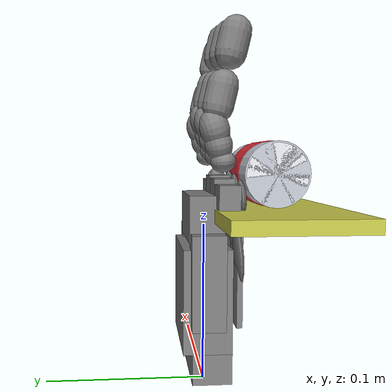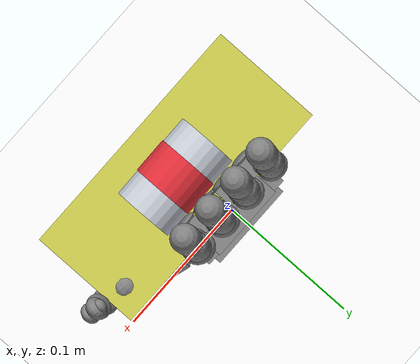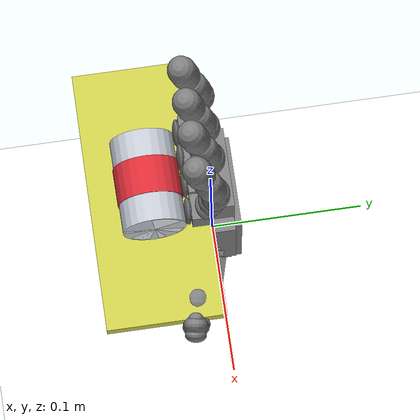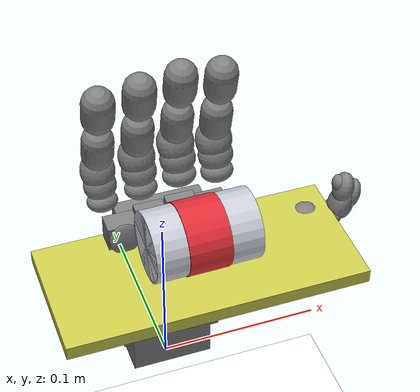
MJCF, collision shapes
<mujoco model="v2_scene_grasp_can_330ml">
  <size nconmax="120" />
  <include file="right_hand_v2_vertical_bottle.xml" />
  <include file="empty_can_330ml_sleek.xml" />

  <statistic center="0.024 -0.038 0.090" extent="0.20" meansize="0.012" />

  <visual>
    <headlight diffuse=".8 .8 .8" ambient=".25 .25 .25" specular="1 1 1" />
    <rgba force="1 0 0 1" />
    <global azimuth="118" elevation="-18" />
  </visual>

  <asset>
    <texture type="skybox" builtin="gradient" rgb1="1 1 1" rgb2="1 1 1" width="800" height="800" />
    <texture type="2d" name="groundplane" builtin="checker" mark="edge" rgb1="1 1 1" rgb2="1 1 1" markrgb="0 0 0" width="300" height="300" />
    <material name="groundplane" texture="groundplane" texuniform="true" texrepeat="5 5" reflectance="0" />
    <material name="support_pad" rgba="0.80 0.80 0.30 0.32" />
  </asset>

  <worldbody>
    <camera name="side" pos="-0.304 -0.242 0.280" xyaxes="0.52 -0.854 0 0.365 0.222 0.904" />
    <camera name="palm" pos="-0.332 0.020 0.212" xyaxes="0 -1 0 0.358 0 0.934" />
    <camera name="front" pos="0.382 -0.040 0.212" xyaxes="0 1 0 -0.358 0 0.934" />

    <geom
        name="floor"
        pos="0 0 -0.25"
        size="0 0 0.01"
        type="plane"
        material="groundplane"
        contype="2"
        conaffinity="2"
    />

    <!-- 横放易拉罐支撑台。编辑器会默认把它移除，但场景文件里保留一份基准支撑。 -->
    <body name="cube_support" mocap="true" pos="0.008041 -0.040830 0.108128">
      <geom
          name="cube_support_geom"
          type="box"
          size="0.085 0.038 0.004"
          pos="0 0 0"
          material="support_pad"
          contype="4"
          conaffinity="0"
      />
    </body>
  </worldbody>

  <sensor>
    <framepos name="cube_position" objtype="body" objname="cube" />
    <framequat name="cube_orientation" objtype="body" objname="cube" />
    <framelinvel name="cube_linvel" objtype="body" objname="cube" />
    <frameangvel name="cube_angvel" objtype="body" objname="cube" />
    <framepos name="can_position" objtype="body" objname="cube" />
    <framequat name="can_orientation" objtype="body" objname="cube" />
    <framelinvel name="can_linvel" objtype="body" objname="cube" />
    <frameangvel name="can_angvel" objtype="body" objname="cube" />
    <framepos name="cube_grasp_band_position" objtype="site" objname="can_grasp_band" />
    <framepos name="palm_position" objtype="site" objname="grasp_site" />
    <framepos name="th_tip_position" objtype="site" objname="th_tip" reftype="site" refname="grasp_site" />
    <framepos name="if_tip_position" objtype="site" objname="if_tip" reftype="site" refname="grasp_site" />
    <framepos name="mf_tip_position" objtype="site" objname="mf_tip" reftype="site" refname="grasp_site" />
    <framepos name="rf_tip_position" objtype="site" objname="rf_tip" reftype="site" refname="grasp_site" />
    <framepos name="pf_tip_position" objtype="site" objname="pf_tip" reftype="site" refname="grasp_site" />
  </sensor>

  <keyframe>
    <!-- CAN03: 记录用户在编辑器中确认的小圆柱初始位姿。 -->
    <key
        name="home"
        qpos="0.3400 0.3145 0.3520 0.3256 0.3380 0.3127 0.3000 0.2775 1.18 0.1200 0.18     0.008041 -0.040830 0.132128 0.707715 -0.007412 0.706458 0.000577"
        ctrl="1.18 0.18 0.3400 0.3520 0.3380 0.3000"
        mpos="0.008041 -0.040830 0.108128"
        mquat="1 0 0 0"
    />
  </keyframe>
</mujoco>

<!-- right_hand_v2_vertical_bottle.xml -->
<mujoco model="Lingxi_Hand_V2_Right">
  <compiler angle="radian" meshdir="/home/ll/SRTP/Aero-Hand/handinformation/URDF/右/qbr/meshes/" />
  <option timestep="0.01" integrator="Euler" iterations="20" ls_iterations="20">
    <flag eulerdamp="disable" />
  </option>
  <custom>
    <numeric data="80" name="max_contact_points" />
    <numeric data="50" name="max_geom_pairs" />
  </custom>
  <asset>
    <material name="black" rgba="0.2 0.2 0.2 1" />
    <material name="gray" rgba="0.5 0.5 0.5 1" />
    <material name="white" rgba="0.529 0.549 0.549 1" />
    <material name="rubber" rgba="0.3 0.3 0.3 1" />
    <mesh name="v2_palm" file="v2_base_link.STL" />
    <mesh name="v2_thumb_base" file="link1.STL" />
    <mesh name="v2_thumb_mid" file="link2.STL" />
    <mesh name="v2_thumb_tip" file="link3.STL" />
    <mesh name="v2_index_proximal" file="link4.STL" />
    <mesh name="v2_index_distal" file="link5.STL" />
    <mesh name="v2_middle_proximal" file="link6.STL" />
    <mesh name="v2_middle_distal" file="link7.STL" />
    <mesh name="v2_ring_proximal" file="link8.STL" />
    <mesh name="v2_ring_distal" file="link9.STL" />
    <mesh name="v2_pinky_proximal" file="link10.STL" />
    <mesh name="v2_pinky_distal" file="link11.STL" />
  </asset>
  <default>
    <default class="v2_hand">
      <site group="4" />
      <default class="visual">
        <geom group="2" type="mesh" contype="0" conaffinity="0" density="0" material="white" />
      </default>
      <joint damping="0.02" armature="0.001559127" frictionloss="0.02" />
      <position kp="3.0" />
      <default class="mcp">
        <joint range="0 1.3963" damping="0.1" />
        <position ctrlrange="0 1.40" />
      </default>
      <default class="pip">
        <joint range="0 1.2915" damping="0.05" />
      </default>
      <default class="thumb_cmc">
        <joint range="0 1.3788" damping="0.1" />
        <position ctrlrange="0 1.38" />
      </default>
      <!-- 拇指 flex 代理遵循 handinformation 中的两段弯曲：
           被动段约 30°，主动段约 45°。 -->
      <default class="thumb_flex">
        <joint range="0 0.5236" damping="0.05" />
      </default>
      <default class="thumb_mcp">
        <joint range="0 0.7854" damping="0.05" />
        <position ctrlrange="0 0.79" />
      </default>
    </default>
  </default>
  <contact>
    <exclude body1="palm" body2="right_index_proximal" />
    <exclude body1="palm" body2="right_middle_proximal" />
    <exclude body1="palm" body2="right_ring_proximal" />
    <exclude body1="palm" body2="right_pinky_proximal" />
    <exclude body1="palm" body2="right_thumb_base" />
    <exclude body1="palm" body2="right_thumb_mid" />
    <exclude body1="palm" body2="right_ring_distal" />
    <exclude body1="palm" body2="right_pinky_distal" />
    <exclude body1="v2_mount" body2="right_index_proximal" />
    <exclude body1="v2_mount" body2="right_middle_proximal" />
    <exclude body1="v2_mount" body2="right_ring_proximal" />
    <exclude body1="v2_mount" body2="right_pinky_proximal" />
    <exclude body1="v2_mount" body2="right_thumb_base" />
    <exclude body1="right_index_proximal" body2="right_index_distal" />
    <exclude body1="right_middle_proximal" body2="right_middle_distal" />
    <exclude body1="right_ring_proximal" body2="right_ring_distal" />
    <exclude body1="right_pinky_proximal" body2="right_pinky_distal" />
    <exclude body1="right_thumb_base" body2="right_thumb_mid" />
    <exclude body1="right_thumb_mid" body2="right_thumb_tip" />
    <exclude body1="right_index_proximal" body2="right_middle_proximal" />
    <exclude body1="right_index_distal" body2="right_middle_distal" />
    <exclude body1="right_middle_proximal" body2="right_ring_proximal" />
    <exclude body1="right_middle_distal" body2="right_ring_distal" />
    <exclude body1="right_ring_proximal" body2="right_pinky_proximal" />
    <exclude body1="right_ring_distal" body2="right_pinky_distal" />
    <exclude body1="right_index_proximal" body2="right_middle_distal" />
    <exclude body1="right_middle_proximal" body2="right_ring_distal" />
    <exclude body1="right_ring_proximal" body2="right_pinky_distal" />
    <exclude body1="right_middle_proximal" body2="right_index_distal" />
    <exclude body1="right_ring_proximal" body2="right_middle_distal" />
    <exclude body1="right_pinky_proximal" body2="right_ring_distal" />
  </contact>
  <worldbody>
    <body name="v2_mount" pos="0 0 0" euler="1.5708 0 0" childclass="v2_hand">
      <body name="palm" pos="0 0 0">
        <geom type="mesh" mesh="v2_palm" class="visual" />
        <geom name="palm_capsule_000" type="box" size="0.0300 0.0310 0.0145" pos="0.0000 0.0580 -0.0010" group="3" friction="1.95 0.014 0.0002" solref="0.008 1.1" solimp="0.95 0.995 0.0005" />
        <geom name="palm_capsule_001" type="box" size="0.0260 0.0140 0.0105" pos="0.0000 0.1060 -0.0010" group="3" friction="1.95 0.014 0.0002" solref="0.008 1.1" solimp="0.95 0.995 0.0005" />
        <geom name="palm_capsule_002" type="box" size="0.0245 0.0170 0.0120" pos="0.0000 0.0230 0.0025" group="3" friction="1.90 0.014 0.0002" solref="0.008 1.1" solimp="0.95 0.995 0.0005" />
        <geom name="palm_capsule_003" type="box" size="0.0070 0.0280 0.0100" pos="0.0280 0.0700 -0.0010" group="3" friction="1.95 0.014 0.0002" solref="0.008 1.1" solimp="0.95 0.995 0.0005" />
        <geom name="palm_capsule_004" type="box" size="0.0070 0.0280 0.0100" pos="-0.0280 0.0700 -0.0010" group="3" friction="1.95 0.014 0.0002" solref="0.008 1.1" solimp="0.95 0.995 0.0005" />
        <geom name="palm_capsule_005" type="box" size="0.0185 0.0330 0.0018" pos="0.0000 0.0715 0.0198" group="3" friction="2.80 0.020 0.0002" solref="0.008 1.1" solimp="0.95 0.995 0.0005" />
        <geom name="palm_capsule_006" type="ellipsoid" group="3" friction="2.50 0.018 0.0002" solref="0.008 1.1" solimp="0.95 0.995 0.0005" pos="0.0145 0.0835 0.0195" quat="0.999048 -0.043619 0 0" size="0.0115 0.0175 0.0024" />
        <geom name="palm_capsule_007" type="ellipsoid" group="3" friction="2.50 0.018 0.0002" solref="0.008 1.1" solimp="0.95 0.995 0.0005" pos="-0.0145 0.0835 0.0195" quat="0.999048 -0.043619 0 0" size="0.0115 0.0175 0.0024" />
        <geom name="palm_capsule_008" type="ellipsoid" group="3" friction="2.45 0.017 0.0002" solref="0.008 1.1" solimp="0.95 0.995 0.0005" pos="0.0000 0.0980 0.0190" quat="0.999048 -0.043619 0 0" size="0.0145 0.0185 0.0024" />
        <geom name="palm_capsule_009" type="box" size="0.0085 0.0075 0.0062" pos="0.0255 0.1205 0.0102" group="3" friction="2.10 0.015 0.0002" solref="0.008 1.1" solimp="0.95 0.995 0.0005" />
        <geom name="palm_capsule_010" type="ellipsoid" group="3" friction="2.35 0.016 0.0002" solref="0.008 1.1" solimp="0.95 0.995 0.0005" pos="0.0255 0.1210 0.0182" quat="0.999048 -0.043619 0 0" size="0.0086 0.0100 0.0023" />
        <geom name="palm_capsule_011" type="box" size="0.0084 0.0080 0.0063" pos="0.0085 0.1230 0.0100" group="3" friction="2.10 0.015 0.0002" solref="0.008 1.1" solimp="0.95 0.995 0.0005" />
        <geom name="palm_capsule_012" type="ellipsoid" group="3" friction="2.35 0.016 0.0002" solref="0.008 1.1" solimp="0.95 0.995 0.0005" pos="0.0085 0.1235 0.0180" quat="0.999048 -0.043619 0 0" size="0.0085 0.0105 0.0023" />
        <geom name="palm_capsule_013" type="box" size="0.0084 0.0080 0.0063" pos="-0.0095 0.1215 0.0100" group="3" friction="2.10 0.015 0.0002" solref="0.008 1.1" solimp="0.95 0.995 0.0005" />
        <geom name="palm_capsule_014" type="ellipsoid" group="3" friction="2.35 0.016 0.0002" solref="0.008 1.1" solimp="0.95 0.995 0.0005" pos="-0.0095 0.1220 0.0180" quat="0.999048 -0.043619 0 0" size="0.0085 0.0105 0.0023" />
        <geom name="palm_capsule_015" type="box" size="0.0088 0.0075 0.0062" pos="-0.0270 0.1190 0.0102" group="3" friction="2.10 0.015 0.0002" solref="0.008 1.1" solimp="0.95 0.995 0.0005" />
        <geom name="palm_capsule_016" type="ellipsoid" group="3" friction="2.35 0.016 0.0002" solref="0.008 1.1" solimp="0.95 0.995 0.0005" pos="-0.0270 0.1195 0.0182" quat="0.999048 -0.043619 0 0" size="0.0088 0.0100 0.0023" />
        <site name="grasp_site" pos="0 0.085 -0.020" group="4" />
        <body name="right_index_proximal" pos="0.034276 0.1374 0.001">
          <inertial pos="-0.003657 0.0162 0.000274" mass="0.0686" diaginertia="7.49e-06 7.33e-06 2.82e-06" />
          <joint name="right_index_mcp" axis="1 0 0" class="mcp" />
          <geom type="mesh" mesh="v2_index_proximal" class="visual" />
          <geom name="right_index_proximal_capsule_000" type="ellipsoid" group="3" friction="1.5" solref="0.005 1.0" solimp="0.97 0.999 0.0001" pos="-0.003700 0.006000 0.005400" quat="0.999048 -0.043619 0 0" size="0.009400 0.006600 0.007600" />
          <geom name="right_index_proximal_capsule_001" type="ellipsoid" group="3" friction="1.5" solref="0.005 1.0" solimp="0.97 0.999 0.0001" pos="-0.003950 0.024400 0.000200" quat="0.987688 -0.156434 0 0" size="0.010400 0.011800 0.008900" />
          <geom name="right_index_proximal_capsule_002" type="ellipsoid" group="3" friction="1.5" solref="0.005 1.0" solimp="0.97 0.999 0.0001" pos="-0.003650 0.015400 0.002700" quat="0.994522 -0.104528 0 0" size="0.010000 0.009600 0.008300" />
          <body name="right_index_distal" pos="0.00084336 0.031988 -0.0026473">
            <inertial pos="-0.00450 0.0246 0.00927" mass="0.0755" diaginertia="1.58e-05 1.57e-05 2.47e-06" />
            <joint name="right_index_pip" axis="1 0 0" class="pip" />
            <geom type="mesh" mesh="v2_index_distal" class="visual" />
            <geom name="right_index_distal_capsule_000" type="capsule" group="3" friction="1.5" solref="0.005 1.0" solimp="0.97 0.999 0.0001" fromto="-0.004533 0.003643 0.004505 -0.004547 0.015148 0.007211" size="0.008789" />
            <geom name="right_index_distal_capsule_001" type="capsule" group="3" friction="1.5" solref="0.005 1.0" solimp="0.97 0.999 0.0001" fromto="-0.004569 0.032374 0.011263 -0.004584 0.043669 0.013920" size="0.008894" />
            <site name="if_tip" pos="-0.004 0.052 0.005" group="4" />
            <site name="if_tip_t00" pos="-0.007 0.042 0.005" size="0.003" />
            <site name="if_tip_t01" pos="-0.005 0.042 0.005" size="0.003" />
            <site name="if_tip_t02" pos="-0.003 0.042 0.005" size="0.003" />
            <site name="if_tip_t03" pos="-0.001 0.042 0.005" size="0.003" />
            <site name="if_tip_t04" pos="-0.007 0.045 0.005" size="0.003" />
            <site name="if_tip_t05" pos="-0.005 0.045 0.005" size="0.003" />
            <site name="if_tip_t06" pos="-0.003 0.045 0.005" size="0.003" />
            <site name="if_tip_t07" pos="-0.001 0.045 0.005" size="0.003" />
            <site name="if_tip_t08" pos="-0.007 0.048 0.005" size="0.003" />
            <site name="if_tip_t09" pos="-0.005 0.048 0.005" size="0.003" />
            <site name="if_tip_t10" pos="-0.003 0.048 0.005" size="0.003" />
            <site name="if_tip_t11" pos="-0.001 0.048 0.005" size="0.003" />
            <site name="if_tip_t12" pos="-0.007 0.051 0.005" size="0.003" />
            <site name="if_tip_t13" pos="-0.005 0.051 0.005" size="0.003" />
            <site name="if_tip_t14" pos="-0.003 0.051 0.005" size="0.003" />
            <site name="if_tip_t15" pos="-0.001 0.051 0.005" size="0.003" />
          </body>
        </body>
        <body name="right_middle_proximal" pos="0.012276 0.14055 0.001">
          <inertial pos="-0.003657 0.0162 0.000274" mass="0.0686" diaginertia="7.49e-06 7.33e-06 2.82e-06" />
          <joint name="right_middle_mcp" axis="1 0 0" class="mcp" />
          <geom type="mesh" mesh="v2_middle_proximal" class="visual" />
          <geom name="right_middle_proximal_capsule_000" type="ellipsoid" group="3" friction="1.5" solref="0.005 1.0" solimp="0.97 0.999 0.0001" pos="-0.003700 0.006100 0.005500" quat="0.999048 -0.043619 0 0" size="0.009600 0.006800 0.007800" />
          <geom name="right_middle_proximal_capsule_001" type="ellipsoid" group="3" friction="1.5" solref="0.005 1.0" solimp="0.97 0.999 0.0001" pos="-0.003950 0.024600 0.000300" quat="0.987688 -0.156434 0 0" size="0.010500 0.012000 0.009000" />
          <geom name="right_middle_proximal_capsule_002" type="ellipsoid" group="3" friction="1.5" solref="0.005 1.0" solimp="0.97 0.999 0.0001" pos="-0.003650 0.015600 0.002900" quat="0.994522 -0.104528 0 0" size="0.010100 0.009900 0.008500" />
          <body name="right_middle_distal" pos="0 0.02968 -0.0024563">
            <inertial pos="-0.00366 0.0269 0.00908" mass="0.0755" diaginertia="1.58e-05 1.57e-05 2.47e-06" />
            <joint name="right_middle_pip" axis="1 0 0" class="pip" />
            <geom type="mesh" mesh="v2_middle_distal" class="visual" />
            <geom name="right_middle_distal_capsule_000" type="capsule" group="3" friction="1.5" solref="0.005 1.0" solimp="0.97 0.999 0.0001" fromto="-0.003689 0.005951 0.004314 -0.003704 0.017455 0.007020" size="0.008789" />
            <geom name="right_middle_distal_capsule_001" type="capsule" group="3" friction="1.5" solref="0.005 1.0" solimp="0.97 0.999 0.0001" fromto="-0.003726 0.034682 0.011072 -0.003740 0.045977 0.013729" size="0.008894" />
            <site name="mf_tip" pos="-0.004 0.052 0.005" group="4" />
            <site name="mf_tip_t00" pos="-0.007 0.042 0.005" size="0.003" />
            <site name="mf_tip_t01" pos="-0.005 0.042 0.005" size="0.003" />
            <site name="mf_tip_t02" pos="-0.003 0.042 0.005" size="0.003" />
            <site name="mf_tip_t03" pos="-0.001 0.042 0.005" size="0.003" />
            <site name="mf_tip_t04" pos="-0.007 0.045 0.005" size="0.003" />
            <site name="mf_tip_t05" pos="-0.005 0.045 0.005" size="0.003" />
            <site name="mf_tip_t06" pos="-0.003 0.045 0.005" size="0.003" />
            <site name="mf_tip_t07" pos="-0.001 0.045 0.005" size="0.003" />
            <site name="mf_tip_t08" pos="-0.007 0.048 0.005" size="0.003" />
            <site name="mf_tip_t09" pos="-0.005 0.048 0.005" size="0.003" />
            <site name="mf_tip_t10" pos="-0.003 0.048 0.005" size="0.003" />
            <site name="mf_tip_t11" pos="-0.001 0.048 0.005" size="0.003" />
            <site name="mf_tip_t12" pos="-0.007 0.051 0.005" size="0.003" />
            <site name="mf_tip_t13" pos="-0.005 0.051 0.005" size="0.003" />
            <site name="mf_tip_t14" pos="-0.003 0.051 0.005" size="0.003" />
            <site name="mf_tip_t15" pos="-0.001 0.051 0.005" size="0.003" />
          </body>
        </body>
        <body name="right_ring_proximal" pos="-0.009724 0.1374 0.001">
          <inertial pos="-0.003657 0.0162 0.000274" mass="0.0686" diaginertia="7.49e-06 7.33e-06 2.82e-06" />
          <joint name="right_ring_mcp" axis="1 0 0" class="mcp" />
          <geom type="mesh" mesh="v2_ring_proximal" class="visual" />
          <geom name="right_ring_proximal_capsule_000" type="ellipsoid" group="3" friction="1.5" solref="0.005 1.0" solimp="0.97 0.999 0.0001" pos="-0.003700 0.006000 0.005300" quat="0.999048 -0.043619 0 0" size="0.009300 0.006500 0.007500" />
          <geom name="right_ring_proximal_capsule_001" type="ellipsoid" group="3" friction="1.5" solref="0.005 1.0" solimp="0.97 0.999 0.0001" pos="-0.003950 0.024300 0.000150" quat="0.987688 -0.156434 0 0" size="0.010300 0.011700 0.008800" />
          <geom name="right_ring_proximal_capsule_002" type="ellipsoid" group="3" friction="1.5" solref="0.005 1.0" solimp="0.97 0.999 0.0001" pos="-0.003650 0.015200 0.002600" quat="0.994522 -0.104528 0 0" size="0.009900 0.009500 0.008200" />
          <body name="right_ring_distal" pos="0 0.02968 -0.0024563">
            <inertial pos="-0.00366 0.0269 0.00908" mass="0.0755" diaginertia="1.58e-05 1.57e-05 2.47e-06" />
            <joint name="right_ring_pip" axis="1 0 0" class="pip" />
            <geom type="mesh" mesh="v2_ring_distal" class="visual" />
            <geom name="right_ring_distal_capsule_000" type="capsule" group="3" friction="1.5" solref="0.005 1.0" solimp="0.97 0.999 0.0001" fromto="-0.003689 0.005951 0.004314 -0.003704 0.017455 0.007020" size="0.008789" />
            <geom name="right_ring_distal_capsule_001" type="capsule" group="3" friction="1.5" solref="0.005 1.0" solimp="0.97 0.999 0.0001" fromto="-0.003726 0.034682 0.011072 -0.003740 0.045977 0.013729" size="0.008894" />
            <site name="rf_tip" pos="-0.004 0.052 0.005" group="4" />
            <site name="rf_tip_t00" pos="-0.007 0.042 0.005" size="0.003" />
            <site name="rf_tip_t01" pos="-0.005 0.042 0.005" size="0.003" />
            <site name="rf_tip_t02" pos="-0.003 0.042 0.005" size="0.003" />
            <site name="rf_tip_t03" pos="-0.001 0.042 0.005" size="0.003" />
            <site name="rf_tip_t04" pos="-0.007 0.045 0.005" size="0.003" />
            <site name="rf_tip_t05" pos="-0.005 0.045 0.005" size="0.003" />
            <site name="rf_tip_t06" pos="-0.003 0.045 0.005" size="0.003" />
            <site name="rf_tip_t07" pos="-0.001 0.045 0.005" size="0.003" />
            <site name="rf_tip_t08" pos="-0.007 0.048 0.005" size="0.003" />
            <site name="rf_tip_t09" pos="-0.005 0.048 0.005" size="0.003" />
            <site name="rf_tip_t10" pos="-0.003 0.048 0.005" size="0.003" />
            <site name="rf_tip_t11" pos="-0.001 0.048 0.005" size="0.003" />
            <site name="rf_tip_t12" pos="-0.007 0.051 0.005" size="0.003" />
            <site name="rf_tip_t13" pos="-0.005 0.051 0.005" size="0.003" />
            <site name="rf_tip_t14" pos="-0.003 0.051 0.005" size="0.003" />
            <site name="rf_tip_t15" pos="-0.001 0.051 0.005" size="0.003" />
          </body>
        </body>
        <body name="right_pinky_proximal" pos="-0.031724 0.13417 0.001">
          <inertial pos="-0.003657 0.0162 0.000274" mass="0.0686" diaginertia="7.49e-06 7.33e-06 2.82e-06" />
          <joint name="right_pinky_mcp" axis="1 0 0" class="mcp" />
          <geom type="mesh" mesh="v2_pinky_proximal" class="visual" />
          <geom name="right_pinky_proximal_capsule_000" type="ellipsoid" group="3" friction="1.5" solref="0.005 1.0" solimp="0.97 0.999 0.0001" pos="-0.003550 0.005700 0.005000" quat="0.999048 -0.043619 0 0" size="0.008700 0.006100 0.007100" />
          <geom name="right_pinky_proximal_capsule_001" type="ellipsoid" group="3" friction="1.5" solref="0.005 1.0" solimp="0.97 0.999 0.0001" pos="-0.003850 0.023500 0.000000" quat="0.987688 -0.156434 0 0" size="0.009700 0.011000 0.008300" />
          <geom name="right_pinky_proximal_capsule_002" type="ellipsoid" group="3" friction="1.5" solref="0.005 1.0" solimp="0.97 0.999 0.0001" pos="-0.003650 0.014700 0.002400" quat="0.994522 -0.104528 0 0" size="0.009200 0.008900 0.007700" />
          <body name="right_pinky_distal" pos="0.00084336 0.031988 -0.0026473">
            <inertial pos="-0.00450 0.0246 0.00927" mass="0.0755" diaginertia="1.58e-05 1.57e-05 2.47e-06" />
            <joint name="right_pinky_pip" axis="1 0 0" class="pip" />
            <geom type="mesh" mesh="v2_pinky_distal" class="visual" />
            <geom name="right_pinky_distal_capsule_000" type="capsule" group="3" friction="1.5" solref="0.005 1.0" solimp="0.97 0.999 0.0001" fromto="-0.004533 0.003643 0.004505 -0.004547 0.015148 0.007211" size="0.008789" />
            <geom name="right_pinky_distal_capsule_001" type="capsule" group="3" friction="1.5" solref="0.005 1.0" solimp="0.97 0.999 0.0001" fromto="-0.004569 0.032374 0.011263 -0.004584 0.043669 0.013920" size="0.008894" />
            <site name="pf_tip" pos="-0.004 0.052 0.005" group="4" />
            <site name="pf_tip_t00" pos="-0.007 0.042 0.005" size="0.003" />
            <site name="pf_tip_t01" pos="-0.005 0.042 0.005" size="0.003" />
            <site name="pf_tip_t02" pos="-0.003 0.042 0.005" size="0.003" />
            <site name="pf_tip_t03" pos="-0.001 0.042 0.005" size="0.003" />
            <site name="pf_tip_t04" pos="-0.007 0.045 0.005" size="0.003" />
            <site name="pf_tip_t05" pos="-0.005 0.045 0.005" size="0.003" />
            <site name="pf_tip_t06" pos="-0.003 0.045 0.005" size="0.003" />
            <site name="pf_tip_t07" pos="-0.001 0.045 0.005" size="0.003" />
            <site name="pf_tip_t08" pos="-0.007 0.048 0.005" size="0.003" />
            <site name="pf_tip_t09" pos="-0.005 0.048 0.005" size="0.003" />
            <site name="pf_tip_t10" pos="-0.003 0.048 0.005" size="0.003" />
            <site name="pf_tip_t11" pos="-0.001 0.048 0.005" size="0.003" />
            <site name="pf_tip_t12" pos="-0.007 0.051 0.005" size="0.003" />
            <site name="pf_tip_t13" pos="-0.005 0.051 0.005" size="0.003" />
            <site name="pf_tip_t14" pos="-0.003 0.051 0.005" size="0.003" />
            <site name="pf_tip_t15" pos="-0.001 0.051 0.005" size="0.003" />
          </body>
        </body>
        <body name="right_thumb_base" pos="0.028693 0.069894 0.010325" quat="0.999048 0 0 0.043619">
          <inertial pos="0.013775 -0.009814 0.002084" mass="0.08488" diaginertia="1.03e-05 9.49e-06 5.67e-06" />
          <joint name="right_thumb_cmc_abd" axis="0 -1 0" class="thumb_cmc" />
          <geom type="mesh" mesh="v2_thumb_base" class="visual" />
          <!-- Keep only the thumb-base box scaffold that actually contributes to
               opposition support; avoid extra palm-connection ellipsoids. -->
          <geom name="right_thumb_base_capsule_000" type="box" size="0.011200 0.010800 0.013800" pos="0.018600 -0.008900 0.003600" quat="0.237188 0.108156 0.803420 0.535313" group="3" friction="1.6" solref="0.005 1.0" solimp="0.97 0.999 0.0001" />
          <geom name="right_thumb_base_capsule_001" type="box" size="0.008200 0.008800 0.010600" pos="0.009800 -0.014200 0.000400" quat="0.237188 0.108156 0.803420 0.535313" group="3" friction="1.6" solref="0.005 1.0" solimp="0.97 0.999 0.0001" />
          <geom name="right_thumb_base_capsule_002" type="box" size="0.006400 0.007000 0.007600" pos="-0.001800 -0.008600 -0.003600" quat="0.237188 0.108156 0.803420 0.535313" group="3" friction="1.6" solref="0.005 1.0" solimp="0.97 0.999 0.0001" />
          <body name="right_thumb_mid" pos="0.02679 -0.0045 0.0045976" quat="0.641137 -0.027549 -0.766225 -0.032924">
            <inertial pos="0 0.01832 -0.01287" mass="0.18907" diaginertia="4.62e-05 4.25e-05 1.60e-05" />
            <joint name="right_thumb_cmc_flex" axis="1 0 0" class="thumb_flex" />
            <geom type="mesh" mesh="v2_thumb_mid" class="visual" />
            <geom name="right_thumb_mid_capsule_bridge" type="ellipsoid" group="3" friction="1.62" solref="0.005 1.0" solimp="0.97 0.999 0.0001" pos="0.000300 0.010200 -0.010900" quat="0.981627 -0.190809 0 0" size="0.009000 0.011000 0.009600" />
            <geom name="right_thumb_mid_capsule_000" type="ellipsoid" group="3" friction="1.60" solref="0.005 1.0" solimp="0.97 0.999 0.0001" pos="0.000300 0.018800 -0.014800" quat="0.970296 -0.241922 0 0" size="0.010800 0.012200 0.012800" />
            <geom name="right_thumb_mid_capsule_001" type="ellipsoid" group="3" friction="1.60" solref="0.005 1.0" solimp="0.97 0.999 0.0001" pos="-0.000100 0.033500 -0.023400" quat="0.945519 -0.325568 0 0" size="0.010800 0.013200 0.011600" />
            <body name="right_thumb_tip" pos="0.0055478 0.0413 -0.024172">
              <inertial pos="-0.005551 0.005391 -0.014448" mass="0.07660" diaginertia="8.30e-06 8.00e-06 4.06e-06" />
              <joint name="right_thumb_mcp" axis="1 0 0" class="thumb_mcp" />
              <geom type="mesh" mesh="v2_thumb_tip" class="visual" />
              <geom name="right_thumb_tip_capsule_000" type="ellipsoid" group="3" friction="1.6" solref="0.005 1.0" solimp="0.97 0.999 0.0001" pos="-0.005600 0.015600 -0.021600" quat="0.994522 -0.104528 0 0" size="0.007600 0.009800 0.005800" />
              <geom name="right_thumb_tip_capsule_001" type="ellipsoid" group="3" friction="1.66" solref="0.005 1.0" solimp="0.97 0.999 0.0001" pos="-0.005450 0.005600 -0.020400" quat="0.982450 -0.186524 0 0" size="0.008400 0.012800 0.006000" />
              <geom name="right_thumb_tip_capsule_002" type="ellipsoid" group="3" friction="1.6" solref="0.005 1.0" solimp="0.97 0.999 0.0001" pos="-0.005700 0.019200 -0.018800" quat="0.999048 0.043619 0 0" size="0.004800 0.005400 0.003900" />
              <geom name="right_thumb_tip_capsule_003" type="ellipsoid" group="3" friction="1.7" solref="0.005 1.0" solimp="0.97 0.999 0.0001" pos="-0.005700 0.010400 -0.026800" quat="0.991445 -0.130526 0 0" size="0.006800 0.009800 0.004600" />
              <geom name="right_thumb_tip_capsule_004" type="ellipsoid" group="3" friction="1.68" solref="0.005 1.0" solimp="0.97 0.999 0.0001" pos="-0.005500 -0.003200 -0.015800" quat="0.961262 -0.275637 0 0" size="0.008600 0.012200 0.005800" />
              <geom name="right_thumb_tip_capsule_005" type="ellipsoid" group="3" friction="1.72" solref="0.005 1.0" solimp="0.97 0.999 0.0001" pos="-0.005650 0.001800 -0.023000" quat="0.987688 -0.156434 0 0" size="0.006400 0.008800 0.004800" />
              <site name="th_tip" pos="-0.006 0.021 -0.020" group="4" />
              <site name="th_tip_t00" pos="-0.010 0.008 -0.020" size="0.003" />
              <site name="th_tip_t01" pos="-0.007 0.008 -0.020" size="0.003" />
              <site name="th_tip_t02" pos="-0.004 0.008 -0.020" size="0.003" />
              <site name="th_tip_t03" pos="-0.001 0.008 -0.020" size="0.003" />
              <site name="th_tip_t04" pos="-0.010 0.012 -0.020" size="0.003" />
              <site name="th_tip_t05" pos="-0.007 0.012 -0.020" size="0.003" />
              <site name="th_tip_t06" pos="-0.004 0.012 -0.020" size="0.003" />
              <site name="th_tip_t07" pos="-0.001 0.012 -0.020" size="0.003" />
              <site name="th_tip_t08" pos="-0.010 0.016 -0.020" size="0.003" />
              <site name="th_tip_t09" pos="-0.007 0.016 -0.020" size="0.003" />
              <site name="th_tip_t10" pos="-0.004 0.016 -0.020" size="0.003" />
              <site name="th_tip_t11" pos="-0.001 0.016 -0.020" size="0.003" />
              <site name="th_tip_t12" pos="-0.010 0.020 -0.020" size="0.003" />
              <site name="th_tip_t13" pos="-0.007 0.020 -0.020" size="0.003" />
              <site name="th_tip_t14" pos="-0.004 0.020 -0.020" size="0.003" />
              <site name="th_tip_t15" pos="-0.001 0.020 -0.020" size="0.003" />
            </body>
          </body>
        </body>
      </body>
    </body>
  </worldbody>
  <actuator>
    <position name="hw_thumb_rot" joint="right_thumb_cmc_abd" class="thumb_cmc" kp="5" />
    <position name="hw_thumb_flex" joint="right_thumb_mcp" class="thumb_mcp" kp="3" />
    <position name="hw_index" joint="right_index_mcp" class="mcp" kp="3" />
    <position name="hw_middle" joint="right_middle_mcp" class="mcp" kp="3" />
    <position name="hw_ring" joint="right_ring_mcp" class="mcp" kp="3" />
    <position name="hw_pinky" joint="right_pinky_mcp" class="mcp" kp="3" />
  </actuator>
  <sensor>
    <jointpos name="hw_pos_thumb_rot" joint="right_thumb_cmc_abd" />
    <jointpos name="hw_pos_thumb_flex" joint="right_thumb_mcp" />
    <jointpos name="hw_pos_index" joint="right_index_mcp" />
    <jointpos name="hw_pos_middle" joint="right_middle_mcp" />
    <jointpos name="hw_pos_ring" joint="right_ring_mcp" />
    <jointpos name="hw_pos_pinky" joint="right_pinky_mcp" />
    <touch name="hw_tip_frc_thumb_00" site="th_tip_t00" />
    <touch name="hw_tip_frc_thumb_01" site="th_tip_t01" />
    <touch name="hw_tip_frc_thumb_02" site="th_tip_t02" />
    <touch name="hw_tip_frc_thumb_03" site="th_tip_t03" />
    <touch name="hw_tip_frc_thumb_04" site="th_tip_t04" />
    <touch name="hw_tip_frc_thumb_05" site="th_tip_t05" />
    <touch name="hw_tip_frc_thumb_06" site="th_tip_t06" />
    <touch name="hw_tip_frc_thumb_07" site="th_tip_t07" />
    <touch name="hw_tip_frc_thumb_08" site="th_tip_t08" />
    <touch name="hw_tip_frc_thumb_09" site="th_tip_t09" />
    <touch name="hw_tip_frc_thumb_10" site="th_tip_t10" />
    <touch name="hw_tip_frc_thumb_11" site="th_tip_t11" />
    <touch name="hw_tip_frc_thumb_12" site="th_tip_t12" />
    <touch name="hw_tip_frc_thumb_13" site="th_tip_t13" />
    <touch name="hw_tip_frc_thumb_14" site="th_tip_t14" />
    <touch name="hw_tip_frc_thumb_15" site="th_tip_t15" />
    <touch name="hw_tip_frc_index_00" site="if_tip_t00" />
    <touch name="hw_tip_frc_index_01" site="if_tip_t01" />
    <touch name="hw_tip_frc_index_02" site="if_tip_t02" />
    <touch name="hw_tip_frc_index_03" site="if_tip_t03" />
    <touch name="hw_tip_frc_index_04" site="if_tip_t04" />
    <touch name="hw_tip_frc_index_05" site="if_tip_t05" />
    <touch name="hw_tip_frc_index_06" site="if_tip_t06" />
    <touch name="hw_tip_frc_index_07" site="if_tip_t07" />
    <touch name="hw_tip_frc_index_08" site="if_tip_t08" />
    <touch name="hw_tip_frc_index_09" site="if_tip_t09" />
    <touch name="hw_tip_frc_index_10" site="if_tip_t10" />
    <touch name="hw_tip_frc_index_11" site="if_tip_t11" />
    <touch name="hw_tip_frc_index_12" site="if_tip_t12" />
    <touch name="hw_tip_frc_index_13" site="if_tip_t13" />
    <touch name="hw_tip_frc_index_14" site="if_tip_t14" />
    <touch name="hw_tip_frc_index_15" site="if_tip_t15" />
    <touch name="hw_tip_frc_middle_00" site="mf_tip_t00" />
    <touch name="hw_tip_frc_middle_01" site="mf_tip_t01" />
    <touch name="hw_tip_frc_middle_02" site="mf_tip_t02" />
    <touch name="hw_tip_frc_middle_03" site="mf_tip_t03" />
    <touch name="hw_tip_frc_middle_04" site="mf_tip_t04" />
    <touch name="hw_tip_frc_middle_05" site="mf_tip_t05" />
    <touch name="hw_tip_frc_middle_06" site="mf_tip_t06" />
    <touch name="hw_tip_frc_middle_07" site="mf_tip_t07" />
    <touch name="hw_tip_frc_middle_08" site="mf_tip_t08" />
    <touch name="hw_tip_frc_middle_09" site="mf_tip_t09" />
    <touch name="hw_tip_frc_middle_10" site="mf_tip_t10" />
    <touch name="hw_tip_frc_middle_11" site="mf_tip_t11" />
    <touch name="hw_tip_frc_middle_12" site="mf_tip_t12" />
    <touch name="hw_tip_frc_middle_13" site="mf_tip_t13" />
    <touch name="hw_tip_frc_middle_14" site="mf_tip_t14" />
    <touch name="hw_tip_frc_middle_15" site="mf_tip_t15" />
    <touch name="hw_tip_frc_ring_00" site="rf_tip_t00" />
    <touch name="hw_tip_frc_ring_01" site="rf_tip_t01" />
    <touch name="hw_tip_frc_ring_02" site="rf_tip_t02" />
    <touch name="hw_tip_frc_ring_03" site="rf_tip_t03" />
    <touch name="hw_tip_frc_ring_04" site="rf_tip_t04" />
    <touch name="hw_tip_frc_ring_05" site="rf_tip_t05" />
    <touch name="hw_tip_frc_ring_06" site="rf_tip_t06" />
    <touch name="hw_tip_frc_ring_07" site="rf_tip_t07" />
    <touch name="hw_tip_frc_ring_08" site="rf_tip_t08" />
    <touch name="hw_tip_frc_ring_09" site="rf_tip_t09" />
    <touch name="hw_tip_frc_ring_10" site="rf_tip_t10" />
    <touch name="hw_tip_frc_ring_11" site="rf_tip_t11" />
    <touch name="hw_tip_frc_ring_12" site="rf_tip_t12" />
    <touch name="hw_tip_frc_ring_13" site="rf_tip_t13" />
    <touch name="hw_tip_frc_ring_14" site="rf_tip_t14" />
    <touch name="hw_tip_frc_ring_15" site="rf_tip_t15" />
    <touch name="hw_tip_frc_pinky_00" site="pf_tip_t00" />
    <touch name="hw_tip_frc_pinky_01" site="pf_tip_t01" />
    <touch name="hw_tip_frc_pinky_02" site="pf_tip_t02" />
    <touch name="hw_tip_frc_pinky_03" site="pf_tip_t03" />
    <touch name="hw_tip_frc_pinky_04" site="pf_tip_t04" />
    <touch name="hw_tip_frc_pinky_05" site="pf_tip_t05" />
    <touch name="hw_tip_frc_pinky_06" site="pf_tip_t06" />
    <touch name="hw_tip_frc_pinky_07" site="pf_tip_t07" />
    <touch name="hw_tip_frc_pinky_08" site="pf_tip_t08" />
    <touch name="hw_tip_frc_pinky_09" site="pf_tip_t09" />
    <touch name="hw_tip_frc_pinky_10" site="pf_tip_t10" />
    <touch name="hw_tip_frc_pinky_11" site="pf_tip_t11" />
    <touch name="hw_tip_frc_pinky_12" site="pf_tip_t12" />
    <touch name="hw_tip_frc_pinky_13" site="pf_tip_t13" />
    <touch name="hw_tip_frc_pinky_14" site="pf_tip_t14" />
    <touch name="hw_tip_frc_pinky_15" site="pf_tip_t15" />
  </sensor>
  <equality>
    <joint joint1="right_index_pip" joint2="right_index_mcp" polycoef="0 0.925 0 0 0" solref="0.005 1" solimp="0.95 0.99 0.001" />
    <joint joint1="right_middle_pip" joint2="right_middle_mcp" polycoef="0 0.925 0 0 0" solref="0.005 1" solimp="0.95 0.99 0.001" />
    <joint joint1="right_ring_pip" joint2="right_ring_mcp" polycoef="0 0.925 0 0 0" solref="0.005 1" solimp="0.95 0.99 0.001" />
    <joint joint1="right_pinky_pip" joint2="right_pinky_mcp" polycoef="0 0.925 0 0 0" solref="0.005 1" solimp="0.95 0.99 0.001" />
    <!-- handinformation / qbr URDF / HW6 tendon model 都指向：
         thumb_flex 通道主要驱动 thumb_mcp，cmc_flex 是联动的被动段。
         这里用 30° / 45° ≈ 0.667 的线性代理，替代旧的 abd→flex 训练近似。 -->
    <joint joint1="right_thumb_cmc_flex" joint2="right_thumb_mcp" polycoef="0 0.6666667 0 0 0" solref="0.005 1" solimp="0.95 0.99 0.001" />
  </equality>
</mujoco>

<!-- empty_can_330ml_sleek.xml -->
<mujoco>
  <default>
    <default class="can_shell">
      <geom
          friction="1.55 0.030 0.006"
          conaffinity="7"
          condim="4"
          solref="0.030 1.0"
          solimp="0.82 0.90 0.003"
      />
    </default>
  </default>

  <asset>
    <material name="can_shell" rgba="0.78 0.80 0.84 0.96" specular="0.45" shininess="0.30"/>
    <material name="can_label" rgba="0.88 0.18 0.22 1.0" specular="0.15" shininess="0.10"/>
    <material name="can_lid" rgba="0.93 0.94 0.96 1.0" specular="0.35" shininess="0.22"/>
  </asset>

  <worldbody>
    <!-- 横放圆柱：总长 0.06 m，直径 0.04 m。 -->
    <body name="cube" pos="0.008041 -0.040830 0.132128" quat="0.707715 -0.007412 0.706458 0.000577" childclass="can_shell">
      <freejoint name="cube_freejoint"/>

      <!-- 主碰撞体：
           MJX 当前不支持 cylinder-vs-box 接触，因此真实物理仍用同包络尺寸的
           capsule 近似；圆柱外观由下面的 visual geom 提供。 -->
      <geom
          name="cube"
          type="capsule"
          fromto="0 0 -0.010 0 0 0.010"
          size="0.020"
          mass="0.030"
          group="3"
          material="can_shell"
      />

      <geom
          name="can_body_visual"
          type="cylinder"
          size="0.020 0.030"
          pos="0 0 0"
          mass="0"
          density="0"
          group="1"
          material="can_shell"
          contype="0"
          conaffinity="0"
      />

      <!-- 标签带：只做视觉辅助，不参与碰撞。 -->
      <geom
          name="can_label_band"
          type="cylinder"
          size="0.0206 0.012"
          pos="0 0 0"
          mass="0"
          density="0"
          group="1"
          material="can_label"
          contype="0"
          conaffinity="0"
      />

      <!-- 保留简化顶盖/底盖，便于视觉识别。 -->
      <geom
          name="can_top_lid"
          type="cylinder"
          size="0.019 0.0015"
          pos="0 0 0.0285"
          mass="0"
          density="0"
          group="1"
          material="can_lid"
          contype="0"
          conaffinity="0"
      />
      <geom
          name="can_bottom_lid"
          type="cylinder"
          size="0.019 0.0015"
          pos="0 0 -0.0285"
          mass="0"
          density="0"
          group="1"
          material="can_lid"
          contype="0"
          conaffinity="0"
      />

      <site name="cube_center" pos="0 0 0" size="0.006" rgba="0 0.8 0 0.7" group="4"/>
      <site name="can_center" pos="0 0 0" size="0.006" rgba="0 0.8 0 0.7" group="4"/>
      <site
          name="can_grasp_band"
          pos="0 0 0"
          size="0.024 0.024 0.022"
          type="ellipsoid"
          rgba="1 0 0 0.10"
          group="4"
      />
    </body>
  </worldbody>
</mujoco>
